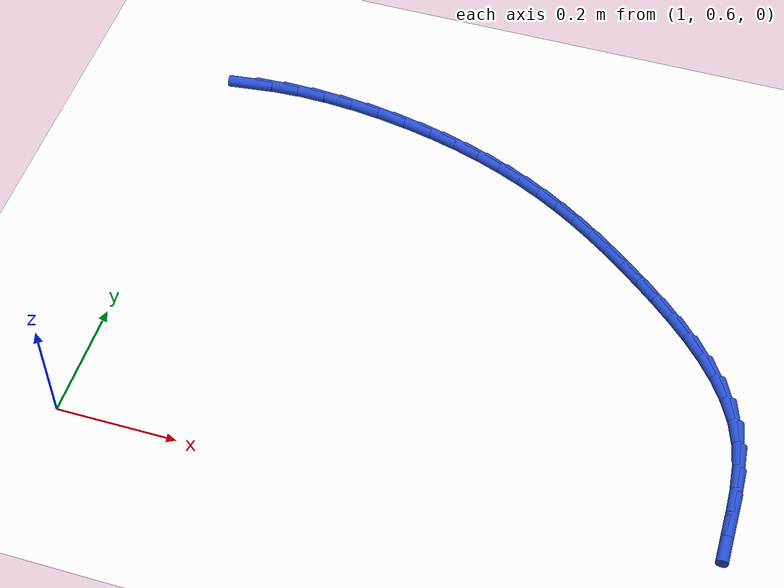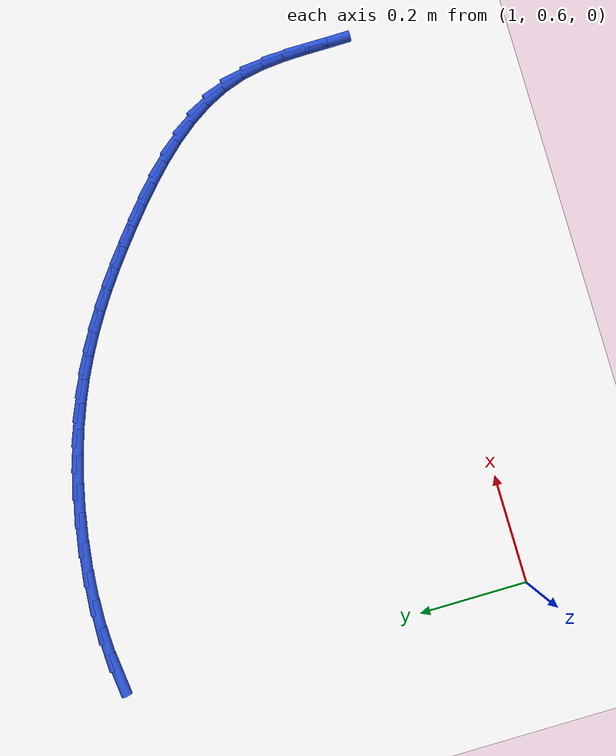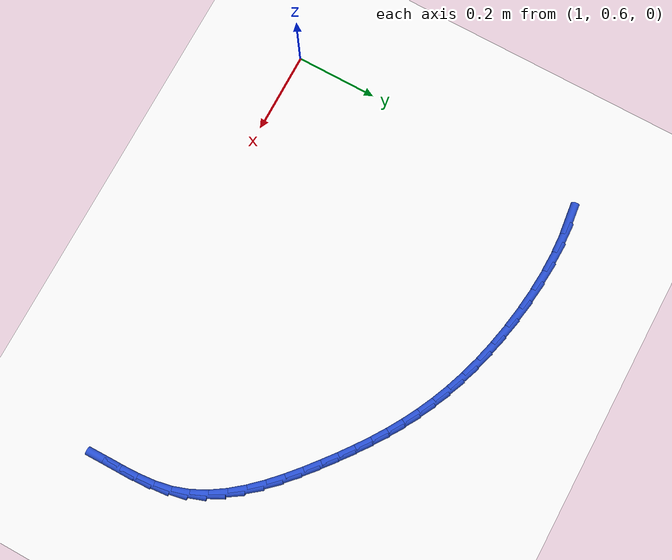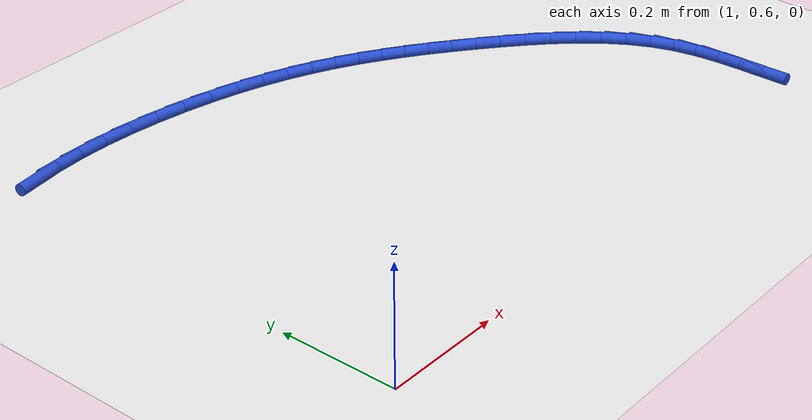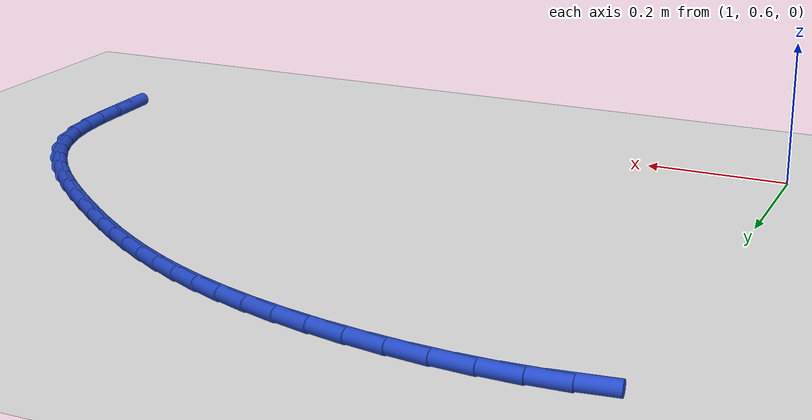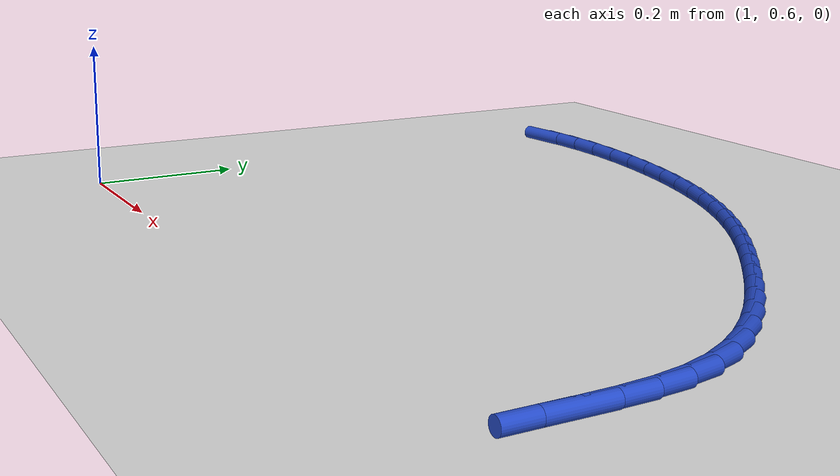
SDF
<sdf version="1.6">
 <world name="default">
  <model name="ground_plane">
   <static>1</static>
   <link name="link">
    <collision name="collision">
     <geometry><plane><normal>0 0 1</normal><size>100 100</size></plane></geometry>
     <surface><friction><ode><mu>100</mu><mu2>50</mu2></ode></friction></surface>
    </collision>
    <visual name="visual">
     <cast_shadows>0</cast_shadows>
     <geometry><plane><normal>0 0 1</normal><size>100 100</size></plane></geometry>
     <material>
      <script><uri>file://media/materials/scripts/gazebo.material</uri><name>Gazebo/WhiteGlow</name></script>
     </material>
    </visual>
   </link>
  </model>
  <model name="line">
   <link name="link_44">
    <pose>1.0486472250594814 1.3470598458268634 0.01 0 1.57 0.11777313130490023</pose>
    <collision name="collision">
     <geometry><cylinder><radius>0.01</radius><length>0.08</length></cylinder></geometry>
    </collision>
    <visual name="visual">
     <material>
      <script><name>Gazebo/Blue</name><uri>file://media/materials/scripts/gazebo.material</uri></script>
     </material>
     <geometry><cylinder><radius>0.01</radius><length>0.08</length></cylinder></geometry>
    </visual>
   </link>
   <link name="link_45">
    <pose>1.0970962891334404 1.3527923727106943 0.01 0 1.57 0.04082169393762994</pose>
    <collision name="collision">
     <geometry><cylinder><radius>0.01</radius><length>0.08</length></cylinder></geometry>
    </collision>
    <visual name="visual">
     <material>
      <script><name>Gazebo/Blue</name><uri>file://media/materials/scripts/gazebo.material</uri></script>
     </material>
     <geometry><cylinder><radius>0.01</radius><length>0.08</length></cylinder></geometry>
    </visual>
   </link>
   <link name="link_46">
    <pose>1.147822321243237 1.3548642462601064 0.01 0 1.57 -0.023702580156370844</pose>
    <collision name="collision">
     <geometry><cylinder><radius>0.01</radius><length>0.08</length></cylinder></geometry>
    </collision>
    <visual name="visual">
     <material>
      <script><name>Gazebo/Blue</name><uri>file://media/materials/scripts/gazebo.material</uri></script>
     </material>
     <geometry><cylinder><radius>0.01</radius><length>0.08</length></cylinder></geometry>
    </visual>
   </link>
   <link name="link_47">
    <pose>1.1999541737689943 1.3536283553920125 0.01 0 1.57 -0.07940442164863164</pose>
    <collision name="collision">
     <geometry><cylinder><radius>0.01</radius><length>0.08</length></cylinder></geometry>
    </collision>
    <visual name="visual">
     <material>
      <script><name>Gazebo/Blue</name><uri>file://media/materials/scripts/gazebo.material</uri></script>
     </material>
     <geometry><cylinder><radius>0.01</radius><length>0.08</length></cylinder></geometry>
    </visual>
   </link>
   <link name="link_48">
    <pose>1.252620699090835 1.3494375890233241 0.01 0 1.57 -0.12908419369028848</pose>
    <collision name="collision">
     <geometry><cylinder><radius>0.01</radius><length>0.08</length></cylinder></geometry>
    </collision>
    <visual name="visual">
     <material>
      <script><name>Gazebo/Blue</name><uri>file://media/materials/scripts/gazebo.material</uri></script>
     </material>
     <geometry><cylinder><radius>0.01</radius><length>0.08</length></cylinder></geometry>
    </visual>
   </link>
   <link name="link_49">
    <pose>1.3049507495888832 1.342644836070954 0.01 0 1.57 -0.17505623574425683</pose>
    <collision name="collision">
     <geometry><cylinder><radius>0.01</radius><length>0.08</length></cylinder></geometry>
    </collision>
    <visual name="visual">
     <material>
      <script><name>Gazebo/Blue</name><uri>file://media/materials/scripts/gazebo.material</uri></script>
     </material>
     <geometry><cylinder><radius>0.01</radius><length>0.08</length></cylinder></geometry>
    </visual>
   </link>
   <link name="link_50">
    <pose>1.3560731776432606 1.3336029854518143 0.01 0 1.57 -0.21943573415509873</pose>
    <collision name="collision">
     <geometry><cylinder><radius>0.01</radius><length>0.08</length></cylinder></geometry>
    </collision>
    <visual name="visual">
     <material>
      <script><name>Gazebo/Blue</name><uri>file://media/materials/scripts/gazebo.material</uri></script>
     </material>
     <geometry><cylinder><radius>0.01</radius><length>0.08</length></cylinder></geometry>
    </visual>
   </link>
   <link name="link_51">
    <pose>1.4051168564127836 1.3226649202259875 0.01 0 1.57 -0.2644905807101352</pose>
    <collision name="collision">
     <geometry><cylinder><radius>0.01</radius><length>0.08</length></cylinder></geometry>
    </collision>
    <visual name="visual">
     <material>
      <script><name>Gazebo/Blue</name><uri>file://media/materials/scripts/gazebo.material</uri></script>
     </material>
     <geometry><cylinder><radius>0.01</radius><length>0.08</length></cylinder></geometry>
    </visual>
   </link>
   <link name="link_52">
    <pose>1.451432769603472 1.3101209177924598 0.01 0 1.57 -0.311564526251264</pose>
    <collision name="collision">
     <geometry><cylinder><radius>0.01</radius><length>0.08</length></cylinder></geometry>
    </collision>
    <visual name="visual">
     <material>
      <script><name>Gazebo/Blue</name><uri>file://media/materials/scripts/gazebo.material</uri></script>
     </material>
     <geometry><cylinder><radius>0.01</radius><length>0.08</length></cylinder></geometry>
    </visual>
   </link>
   <link name="link_53">
    <pose>1.49514250113705 1.2960440486838574 0.01 0 1.57 -0.36007658148375093</pose>
    <collision name="collision">
     <geometry><cylinder><radius>0.01</radius><length>0.08</length></cylinder></geometry>
    </collision>
    <visual name="visual">
     <material>
      <script><name>Gazebo/Blue</name><uri>file://media/materials/scripts/gazebo.material</uri></script>
     </material>
     <geometry><cylinder><radius>0.01</radius><length>0.08</length></cylinder></geometry>
    </visual>
   </link>
   <link name="link_54">
    <pose>1.5365346432173967 1.2804603092886733 0.01 0 1.57 -0.4090628946613508</pose>
    <collision name="collision">
     <geometry><cylinder><radius>0.01</radius><length>0.08</length></cylinder></geometry>
    </collision>
    <visual name="visual">
     <material>
      <script><name>Gazebo/Blue</name><uri>file://media/materials/scripts/gazebo.material</uri></script>
     </material>
     <geometry><cylinder><radius>0.01</radius><length>0.08</length></cylinder></geometry>
    </visual>
   </link>
   <link name="link_55">
    <pose>1.5758977880483918 1.2633956959954 0.01 0 1.57 -0.4574219296724204</pose>
    <collision name="collision">
     <geometry><cylinder><radius>0.01</radius><length>0.08</length></cylinder></geometry>
    </collision>
    <visual name="visual">
     <material>
      <script><name>Gazebo/Blue</name><uri>file://media/materials/scripts/gazebo.material</uri></script>
     </material>
     <geometry><cylinder><radius>0.01</radius><length>0.08</length></cylinder></geometry>
    </visual>
   </link>
   <link name="link_56">
    <pose>1.6135205278339109 1.2448762051925306 0.01 0 1.57 -0.5039963539387889</pose>
    <collision name="collision">
     <geometry><cylinder><radius>0.01</radius><length>0.08</length></cylinder></geometry>
    </collision>
    <visual name="visual">
     <material>
      <script><name>Gazebo/Blue</name><uri>file://media/materials/scripts/gazebo.material</uri></script>
     </material>
     <geometry><cylinder><radius>0.01</radius><length>0.08</length></cylinder></geometry>
    </visual>
   </link>
   <link name="link_57">
    <pose>1.6496914547778343 1.2249278332685578 0.01 0 1.57 -0.5476683075170772</pose>
    <collision name="collision">
     <geometry><cylinder><radius>0.01</radius><length>0.08</length></cylinder></geometry>
    </collision>
    <visual name="visual">
     <material>
      <script><name>Gazebo/Blue</name><uri>file://media/materials/scripts/gazebo.material</uri></script>
     </material>
     <geometry><cylinder><radius>0.01</radius><length>0.08</length></cylinder></geometry>
    </visual>
   </link>
   <link name="link_58">
    <pose>1.6846991610840407 1.2035765766119741 0.01 0 1.57 -0.5874498968761576</pose>
    <collision name="collision">
     <geometry><cylinder><radius>0.01</radius><length>0.08</length></cylinder></geometry>
    </collision>
    <visual name="visual">
     <material>
      <script><name>Gazebo/Blue</name><uri>file://media/materials/scripts/gazebo.material</uri></script>
     </material>
     <geometry><cylinder><radius>0.01</radius><length>0.08</length></cylinder></geometry>
    </visual>
   </link>
   <link name="link_59">
    <pose>1.7188322389564075 1.180848431611273 0.01 0 1.57 -0.6225523932730951</pose>
    <collision name="collision">
     <geometry><cylinder><radius>0.01</radius><length>0.08</length></cylinder></geometry>
    </collision>
    <visual name="visual">
     <material>
      <script><name>Gazebo/Blue</name><uri>file://media/materials/scripts/gazebo.material</uri></script>
     </material>
     <geometry><cylinder><radius>0.01</radius><length>0.08</length></cylinder></geometry>
    </visual>
   </link>
   <link name="link_60">
    <pose>1.7523792805988143 1.1567693946549467 0.01 0 1.57 -0.6524246115541976</pose>
    <collision name="collision">
     <geometry><cylinder><radius>0.01</radius><length>0.08</length></cylinder></geometry>
    </collision>
    <visual name="visual">
     <material>
      <script><name>Gazebo/Blue</name><uri>file://media/materials/scripts/gazebo.material</uri></script>
     </material>
     <geometry><cylinder><radius>0.01</radius><length>0.08</length></cylinder></geometry>
    </visual>
   </link>
   <link name="link_61">
    <pose>1.7856288782151375 1.1313654621314881 0.01 0 1.57 -0.6767597854101373</pose>
    <collision name="collision">
     <geometry><cylinder><radius>0.01</radius><length>0.08</length></cylinder></geometry>
    </collision>
    <visual name="visual">
     <material>
      <script><name>Gazebo/Blue</name><uri>file://media/materials/scripts/gazebo.material</uri></script>
     </material>
     <geometry><cylinder><radius>0.01</radius><length>0.08</length></cylinder></geometry>
    </visual>
   </link>
   <link name="link_62">
    <pose>1.8188696240092572 1.1046626304293907 0.01 0 1.57 -0.6976279733830066</pose>
    <collision name="collision">
     <geometry><cylinder><radius>0.01</radius><length>0.08</length></cylinder></geometry>
    </collision>
    <visual name="visual">
     <material>
      <script><name>Gazebo/Blue</name><uri>file://media/materials/scripts/gazebo.material</uri></script>
     </material>
     <geometry><cylinder><radius>0.01</radius><length>0.08</length></cylinder></geometry>
    </visual>
   </link>
   <link name="link_63">
    <pose>1.8522595238247823 1.0766738274564027 0.01 0 1.57 -0.7270384417598258</pose>
    <collision name="collision">
     <geometry><cylinder><radius>0.01</radius><length>0.08</length></cylinder></geometry>
    </collision>
    <visual name="visual">
     <material>
      <script><name>Gazebo/Blue</name><uri>file://media/materials/scripts/gazebo.material</uri></script>
     </material>
     <geometry><cylinder><radius>0.01</radius><length>0.08</length></cylinder></geometry>
    </visual>
   </link>
   <link name="link_64">
    <pose>1.8852341255256664 1.0473396808572495 0.01 0 1.57 -0.769679246691974</pose>
    <collision name="collision">
     <geometry><cylinder><radius>0.01</radius><length>0.08</length></cylinder></geometry>
    </collision>
    <visual name="visual">
     <material>
      <script><name>Gazebo/Blue</name><uri>file://media/materials/scripts/gazebo.material</uri></script>
     </material>
     <geometry><cylinder><radius>0.01</radius><length>0.08</length></cylinder></geometry>
    </visual>
   </link>
   <link name="link_65">
    <pose>1.9169805244783376 1.0165759542964274 0.01 0 1.57 -0.8268779449244769</pose>
    <collision name="collision">
     <geometry><cylinder><radius>0.01</radius><length>0.08</length></cylinder></geometry>
    </collision>
    <visual name="visual">
     <material>
      <script><name>Gazebo/Blue</name><uri>file://media/materials/scripts/gazebo.material</uri></script>
     </material>
     <geometry><cylinder><radius>0.01</radius><length>0.08</length></cylinder></geometry>
    </visual>
   </link>
   <link name="link_66">
    <pose>1.9466855885977083 0.9842983886761354 0.01 0 1.57 -0.9005703691027044</pose>
    <collision name="collision">
     <geometry><cylinder><radius>0.01</radius><length>0.08</length></cylinder></geometry>
    </collision>
    <visual name="visual">
     <material>
      <script><name>Gazebo/Blue</name><uri>file://media/materials/scripts/gazebo.material</uri></script>
     </material>
     <geometry><cylinder><radius>0.01</radius><length>0.08</length></cylinder></geometry>
    </visual>
   </link>
   <link name="link_67">
    <pose>1.973536185798688 0.9504227248985719 0.01 0 1.57 -0.9930328247931165</pose>
    <collision name="collision">
     <geometry><cylinder><radius>0.01</radius><length>0.08</length></cylinder></geometry>
    </collision>
    <visual name="visual">
     <material>
      <script><name>Gazebo/Blue</name><uri>file://media/materials/scripts/gazebo.material</uri></script>
     </material>
     <geometry><cylinder><radius>0.01</radius><length>0.08</length></cylinder></geometry>
    </visual>
   </link>
   <link name="link_68">
    <pose>1.996719183996188 0.9148647038659359 0.01 0 1.57 -1.1062928474867122</pose>
    <collision name="collision">
     <geometry><cylinder><radius>0.01</radius><length>0.08</length></cylinder></geometry>
    </collision>
    <visual name="visual">
     <material>
      <script><name>Gazebo/Blue</name><uri>file://media/materials/scripts/gazebo.material</uri></script>
     </material>
     <geometry><cylinder><radius>0.01</radius><length>0.08</length></cylinder></geometry>
    </visual>
   </link>
   <link name="link_69">
    <pose>2.0154214511051194 0.8775400664804246 0.01 0 1.57 -1.2408571684491947</pose>
    <collision name="collision">
     <geometry><cylinder><radius>0.01</radius><length>0.08</length></cylinder></geometry>
    </collision>
    <visual name="visual">
     <material>
      <script><name>Gazebo/Blue</name><uri>file://media/materials/scripts/gazebo.material</uri></script>
     </material>
     <geometry><cylinder><radius>0.01</radius><length>0.08</length></cylinder></geometry>
    </visual>
   </link>
   <link name="link_70">
    <pose>2.0288367818500235 0.8383662867435983 0.01 0 1.57 -1.3764013165145574</pose>
    <collision name="collision">
     <geometry><cylinder><radius>0.01</radius><length>0.08</length></cylinder></geometry>
    </collision>
    <visual name="visual">
     <material>
      <script><name>Gazebo/Blue</name><uri>file://media/materials/scripts/gazebo.material</uri></script>
     </material>
     <geometry><cylinder><radius>0.01</radius><length>0.08</length></cylinder></geometry>
    </visual>
   </link>
   <link name="link_71">
    <pose>2.036893492948129 0.797444617288669 0.01 0 1.57 -1.4763379174900986</pose>
    <collision name="collision">
     <geometry><cylinder><radius>0.01</radius><length>0.08</length></cylinder></geometry>
    </collision>
    <visual name="visual">
     <material>
      <script><name>Gazebo/Blue</name><uri>file://media/materials/scripts/gazebo.material</uri></script>
     </material>
     <geometry><cylinder><radius>0.01</radius><length>0.08</length></cylinder></geometry>
    </visual>
   </link>
   <link name="link_72">
    <pose>2.0408938604904856 0.7552200776832422 0.01 0 1.57 -1.5383516902218048</pose>
    <collision name="collision">
     <geometry><cylinder><radius>0.01</radius><length>0.08</length></cylinder></geometry>
    </collision>
    <visual name="visual">
     <material>
      <script><name>Gazebo/Blue</name><uri>file://media/materials/scripts/gazebo.material</uri></script>
     </material>
     <geometry><cylinder><radius>0.01</radius><length>0.08</length></cylinder></geometry>
    </visual>
   </link>
   <link name="link_73">
    <pose>2.042290919408614 0.7121754076090748 0.01 0 1.57 -1.5651077412706345</pose>
    <collision name="collision">
     <geometry><cylinder><radius>0.01</radius><length>0.08</length></cylinder></geometry>
    </collision>
    <visual name="visual">
     <material>
      <script><name>Gazebo/Blue</name><uri>file://media/materials/scripts/gazebo.material</uri></script>
     </material>
     <geometry><cylinder><radius>0.01</radius><length>0.08</length></cylinder></geometry>
    </visual>
   </link>
   <link name="link_74">
    <pose>2.0425377046340376 0.6687933467479239 0.01 0 1.57 -1.5580868294887238</pose>
    <collision name="collision">
     <geometry><cylinder><radius>0.01</radius><length>0.08</length></cylinder></geometry>
    </collision>
    <visual name="visual">
     <material>
      <script><name>Gazebo/Blue</name><uri>file://media/materials/scripts/gazebo.material</uri></script>
     </material>
     <geometry><cylinder><radius>0.01</radius><length>0.08</length></cylinder></geometry>
    </visual>
   </link>
  </model>
 </world>
</sdf>
